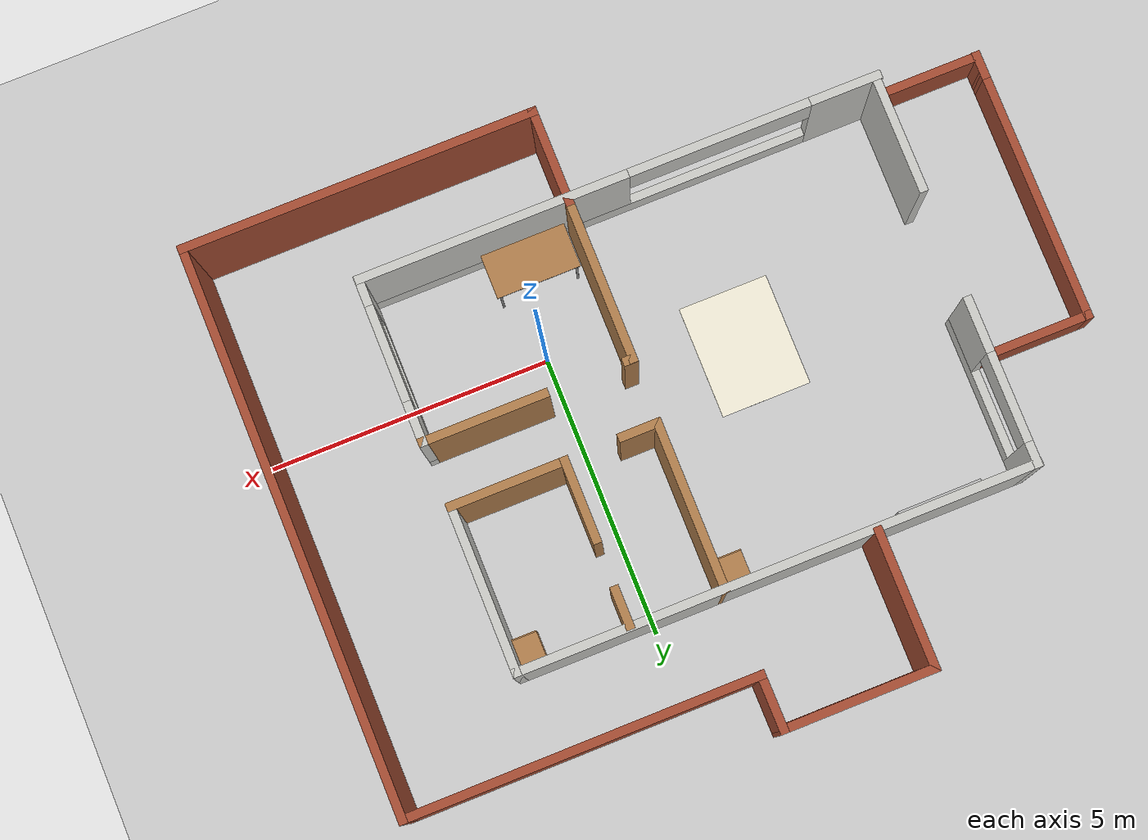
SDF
<sdf version="1.7">
 <world name="default">
  <light name="sun" type="directional">
   <pose>0 0 10 0 -0 0</pose>
   <diffuse>0.8 0.8 0.8 1</diffuse>
   <specular>0.2 0.2 0.2 1</specular>
   <attenuation>
    <range>1000</range>
    <constant>0.9</constant>
    <linear>0.01</linear>
    <quadratic>0.001</quadratic>
   </attenuation>
   <direction>-0.5 0.1 -0.9</direction>
   <spot><inner_angle>0</inner_angle><outer_angle>0</outer_angle><falloff>0</falloff></spot>
  </light>
  <model name="ground_plane">
   <static>1</static>
   <link name="link">
    <collision name="collision">
     <geometry><plane><normal>0 0 1</normal><size>100 100</size></plane></geometry>
     <surface><friction><ode><mu>100</mu><mu2>50</mu2></ode></friction></surface>
    </collision>
    <visual name="visual">
     <cast_shadows>0</cast_shadows>
     <geometry><plane><normal>0 0 1</normal><size>100 100</size></plane></geometry>
     <material>
      <script><uri>file://media/materials/scripts/gazebo.material</uri><name>Gazebo/Grey</name></script>
     </material>
    </visual>
   </link>
  </model>
  <gravity>0 0 -9.8</gravity>
  <magnetic_field>6e-06 2.3e-05 -4.2e-05</magnetic_field>
  <atmosphere type="adiabatic"/>
  <physics type="ode">
   <max_step_size>0.001</max_step_size>
   <real_time_factor>1</real_time_factor>
   <real_time_update_rate>1000</real_time_update_rate>
  </physics>
  <scene><ambient>0.4 0.4 0.4 1</ambient><background>0.7 0.7 0.7 1</background><shadows>1</shadows></scene>
  <audio><device>default</device></audio>
  <spherical_coordinates>
   <surface_model>EARTH_WGS84</surface_model>
   <latitude_deg>0</latitude_deg>
   <longitude_deg>0</longitude_deg>
   <elevation>0</elevation>
   <heading_deg>0</heading_deg>
  </spherical_coordinates>
  <model name="anlh_house">
   <pose>-1.89024 1.87159 0 0 -0 0</pose>
   <link name="Wall_0">
    <collision name="Wall_0_Collision">
     <geometry><box><size>9.13044 0.15 2.5</size></box></geometry>
     <pose>0 0 1.25 0 -0 0</pose>
    </collision>
    <visual name="Wall_0_Visual">
     <pose>0 0 1.25 0 -0 0</pose>
     <geometry><box><size>9.13044 0.15 2.5</size></box></geometry>
     <material>
      <script><uri>file://media/materials/scripts/gazebo.material</uri><name>Gazebo/CeilingTiled</name></script>
      <ambient>1 1 1 1</ambient>
     </material>
     <meta><layer>0</layer></meta>
    </visual>
    <pose>-0.244326 2.97886 0 0 -0 0</pose>
   </link>
   <link name="Wall_10">
    <collision name="Wall_10_Collision">
     <geometry><box><size>0.75 0.15 2.5</size></box></geometry>
     <pose>0 0 1.25 0 -0 0</pose>
    </collision>
    <visual name="Wall_10_Visual">
     <pose>0 0 1.25 0 -0 0</pose>
     <geometry><box><size>0.75 0.15 2.5</size></box></geometry>
     <material>
      <script><uri>file://media/materials/scripts/gazebo.material</uri><name>Gazebo/Wood</name></script>
      <ambient>1 1 1 1</ambient>
     </material>
     <meta><layer>0</layer></meta>
    </visual>
    <pose>0.982799 0.109395 0 0 -0 0</pose>
   </link>
   <link name="Wall_12">
    <collision name="Wall_12_Collision">
     <geometry><box><size>2 0.15 2.5</size></box></geometry>
     <pose>0 0 1.25 0 -0 0</pose>
    </collision>
    <visual name="Wall_12_Visual">
     <pose>0 0 1.25 0 -0 0</pose>
     <geometry><box><size>2 0.15 2.5</size></box></geometry>
     <material>
      <script><uri>file://media/materials/scripts/gazebo.material</uri><name>Gazebo/Wood</name></script>
      <ambient>1 1 1 1</ambient>
     </material>
     <meta><layer>0</layer></meta>
    </visual>
    <pose>3.32089 0.128859 0 0 -0 3.14159</pose>
   </link>
   <link name="Wall_15">
    <collision name="Wall_15_Collision">
     <geometry><box><size>1.5 0.15 2.5</size></box></geometry>
     <pose>0 0 1.25 0 -0 0</pose>
    </collision>
    <visual name="Wall_15_Visual">
     <pose>0 0 1.25 0 -0 0</pose>
     <geometry><box><size>1.5 0.15 2.5</size></box></geometry>
     <material>
      <script><uri>file://media/materials/scripts/gazebo.material</uri><name>Gazebo/Wood</name></script>
      <ambient>1 1 1 1</ambient>
     </material>
     <meta><layer>0</layer></meta>
    </visual>
    <pose>2.28398 0.804804 0 0 -0 -1.5708</pose>
   </link>
   <link name="Wall_17">
    <pose>-0.248567 -3.85969 0 0 -0 0.00091</pose>
    <visual name="Wall_17_Visual_0">
     <pose>-3.97572 0 1.25 0 -0 0</pose>
     <geometry><box><size>1.25973 0.15 2.5</size></box></geometry>
     <material>
      <script><uri>file://media/materials/scripts/gazebo.material</uri><name>Gazebo/CeilingTiled</name></script>
      <ambient>1 1 1 1</ambient>
     </material>
     <meta><layer>0</layer></meta>
    </visual>
    <collision name="Wall_17_Collision_0">
     <geometry><box><size>1.25973 0.15 2.5</size></box></geometry>
     <pose>-3.97572 0 1.25 0 -0 0</pose>
    </collision>
    <visual name="Wall_17_Visual_1">
     <pose>0.629866 0 0.25 0 -0 0</pose>
     <geometry><box><size>7.95144 0.15 0.5</size></box></geometry>
     <material>
      <script><uri>file://media/materials/scripts/gazebo.material</uri><name>Gazebo/CeilingTiled</name></script>
      <ambient>1 1 1 1</ambient>
     </material>
     <meta><layer>0</layer></meta>
    </visual>
    <collision name="Wall_17_Collision_1">
     <geometry><box><size>7.95144 0.15 0.5</size></box></geometry>
     <pose>0.629866 0 0.25 0 -0 0</pose>
    </collision>
    <visual name="Wall_17_Visual_2">
     <pose>2.22487 0 1.5 0 -0 0</pose>
     <geometry><box><size>4.76145 0.15 2</size></box></geometry>
     <material>
      <script><uri>file://media/materials/scripts/gazebo.material</uri><name>Gazebo/CeilingTiled</name></script>
      <ambient>1 1 1 1</ambient>
     </material>
     <meta><layer>0</layer></meta>
    </visual>
    <collision name="Wall_17_Collision_2">
     <geometry><box><size>4.76145 0.15 2</size></box></geometry>
     <pose>2.22487 0 1.5 0 -0 0</pose>
    </collision>
    <visual name="Wall_17_Visual_3">
     <pose>-1.75086 0 2.1 0 -0 0</pose>
     <geometry><box><size>3.19 0.15 0.8</size></box></geometry>
     <material>
      <script><uri>file://media/materials/scripts/gazebo.material</uri><name>Gazebo/CeilingTiled</name></script>
      <ambient>1 1 1 1</ambient>
     </material>
     <meta><layer>0</layer></meta>
    </visual>
    <collision name="Wall_17_Collision_3">
     <geometry><box><size>3.19 0.15 0.8</size></box></geometry>
     <pose>-1.75086 0 2.1 0 -0 0</pose>
    </collision>
   </link>
   <link name="Wall_18">
    <pose>4.28958 -2.43057 0 0 -0 1.5708</pose>
    <visual name="Wall_18_Visual_0">
     <pose>-1.22917 0 1.25 0 -0 0</pose>
     <geometry><box><size>0.541656 0.15 2.5</size></box></geometry>
     <material>
      <script><uri>file://media/materials/scripts/gazebo.material</uri><name>Gazebo/CeilingTiled</name></script>
      <ambient>1 1 1 1</ambient>
     </material>
     <meta><layer>0</layer></meta>
    </visual>
    <collision name="Wall_18_Collision_0">
     <geometry><box><size>0.541656 0.15 2.5</size></box></geometry>
     <pose>-1.22917 0 1.25 0 -0 0</pose>
    </collision>
    <visual name="Wall_18_Visual_1">
     <pose>0.270828 0 0.25 0 -0 0</pose>
     <geometry><box><size>2.45834 0.15 0.5</size></box></geometry>
     <material>
      <script><uri>file://media/materials/scripts/gazebo.material</uri><name>Gazebo/CeilingTiled</name></script>
      <ambient>1 1 1 1</ambient>
     </material>
     <meta><layer>0</layer></meta>
    </visual>
    <collision name="Wall_18_Collision_1">
     <geometry><box><size>2.45834 0.15 0.5</size></box></geometry>
     <pose>0.270828 0 0.25 0 -0 0</pose>
    </collision>
    <visual name="Wall_18_Visual_2">
     <pose>1.10933 0 1.5 0 -0 0</pose>
     <geometry><box><size>0.781344 0.15 2</size></box></geometry>
     <material>
      <script><uri>file://media/materials/scripts/gazebo.material</uri><name>Gazebo/CeilingTiled</name></script>
      <ambient>1 1 1 1</ambient>
     </material>
     <meta><layer>0</layer></meta>
    </visual>
    <collision name="Wall_18_Collision_2">
     <geometry><box><size>0.781344 0.15 2</size></box></geometry>
     <pose>1.10933 0 1.5 0 -0 0</pose>
    </collision>
    <visual name="Wall_18_Visual_3">
     <pose>-0.119844 0 2.1 0 -0 0</pose>
     <geometry><box><size>1.677 0.15 0.8</size></box></geometry>
     <material>
      <script><uri>file://media/materials/scripts/gazebo.material</uri><name>Gazebo/CeilingTiled</name></script>
      <ambient>1 1 1 1</ambient>
     </material>
     <meta><layer>0</layer></meta>
    </visual>
    <collision name="Wall_18_Collision_3">
     <geometry><box><size>1.677 0.15 0.8</size></box></geometry>
     <pose>-0.119844 0 2.1 0 -0 0</pose>
    </collision>
   </link>
   <link name="Wall_2">
    <pose>-4.72585 1.55386 0 0 -0 -1.5708</pose>
    <visual name="Wall_2_Visual_0">
     <pose>-1.27549 0 1.25 0 -0 0</pose>
     <geometry><box><size>0.449022 0.15 2.5</size></box></geometry>
     <material>
      <script><uri>file://media/materials/scripts/gazebo.material</uri><name>Gazebo/CeilingTiled</name></script>
      <ambient>1 1 1 1</ambient>
     </material>
     <meta><layer>0</layer></meta>
    </visual>
    <collision name="Wall_2_Collision_0">
     <geometry><box><size>0.449022 0.15 2.5</size></box></geometry>
     <pose>-1.27549 0 1.25 0 -0 0</pose>
    </collision>
    <visual name="Wall_2_Visual_1">
     <pose>0.224511 0 0.25 0 -0 0</pose>
     <geometry><box><size>2.55098 0.15 0.5</size></box></geometry>
     <material>
      <script><uri>file://media/materials/scripts/gazebo.material</uri><name>Gazebo/CeilingTiled</name></script>
      <ambient>1 1 1 1</ambient>
     </material>
     <meta><layer>0</layer></meta>
    </visual>
    <collision name="Wall_2_Collision_1">
     <geometry><box><size>2.55098 0.15 0.5</size></box></geometry>
     <pose>0.224511 0 0.25 0 -0 0</pose>
    </collision>
    <visual name="Wall_2_Visual_2">
     <pose>1.00701 0 1.5 0 -0 0</pose>
     <geometry><box><size>0.985978 0.15 2</size></box></geometry>
     <material>
      <script><uri>file://media/materials/scripts/gazebo.material</uri><name>Gazebo/CeilingTiled</name></script>
      <ambient>1 1 1 1</ambient>
     </material>
     <meta><layer>0</layer></meta>
    </visual>
    <collision name="Wall_2_Collision_2">
     <geometry><box><size>0.985978 0.15 2</size></box></geometry>
     <pose>1.00701 0 1.5 0 -0 0</pose>
    </collision>
    <visual name="Wall_2_Visual_3">
     <pose>-0.268478 0 2.1 0 -0 0</pose>
     <geometry><box><size>1.565 0.15 0.8</size></box></geometry>
     <material>
      <script><uri>file://media/materials/scripts/gazebo.material</uri><name>Gazebo/CeilingTiled</name></script>
      <ambient>1 1 1 1</ambient>
     </material>
     <meta><layer>0</layer></meta>
    </visual>
    <collision name="Wall_2_Collision_3">
     <geometry><box><size>1.565 0.15 0.8</size></box></geometry>
     <pose>-0.268478 0 2.1 0 -0 0</pose>
    </collision>
   </link>
   <link name="Wall_20">
    <collision name="Wall_20_Collision">
     <geometry><box><size>2.25 0.15 2.5</size></box></geometry>
     <pose>0 0 1.25 0 -0 0</pose>
    </collision>
    <visual name="Wall_20_Visual">
     <pose>0 0 1.25 0 -0 0</pose>
     <geometry><box><size>2.25 0.15 2.5</size></box></geometry>
     <material>
      <script><uri>file://media/materials/scripts/gazebo.material</uri><name>Gazebo/Wood</name></script>
      <ambient>1 1 1 1</ambient>
     </material>
     <meta><layer>0</layer></meta>
    </visual>
    <pose>3.23958 -1.00557 0 0 -0 3.14159</pose>
   </link>
   <link name="Wall_22">
    <collision name="Wall_22_Collision">
     <geometry><box><size>2.92439 0.15 2.5</size></box></geometry>
     <pose>0 0 1.25 0 -0 0</pose>
    </collision>
    <visual name="Wall_22_Visual">
     <pose>0 0 1.25 0 -0 0</pose>
     <geometry><box><size>2.92439 0.15 2.5</size></box></geometry>
     <material>
      <script><uri>file://media/materials/scripts/gazebo.material</uri><name>Gazebo/Wood</name></script>
      <ambient>1 1 1 1</ambient>
     </material>
     <meta><layer>0</layer></meta>
    </visual>
    <pose>0.6565 -2.40032 0 0 -0 1.5708</pose>
   </link>
   <link name="Wall_23">
    <collision name="Wall_23_Collision">
     <geometry><box><size>0.25 0.15 2.5</size></box></geometry>
     <pose>0 0 1.25 0 -0 0</pose>
    </collision>
    <visual name="Wall_23_Visual">
     <pose>0 0 1.25 0 -0 0</pose>
     <geometry><box><size>0.25 0.15 2.5</size></box></geometry>
     <material>
      <script><uri>file://media/materials/scripts/gazebo.material</uri><name>Gazebo/Wood</name></script>
      <ambient>1 1 1 1</ambient>
     </material>
     <meta><layer>0</layer></meta>
    </visual>
    <pose>0.7065 -1.00557 0 0 -0 0</pose>
   </link>
   <link name="Wall_27">
    <collision name="Wall_27_Collision">
     <geometry><box><size>2.10962 0.15 1</size></box></geometry>
     <pose>0 0 0.5 0 -0 0</pose>
    </collision>
    <visual name="Wall_27_Visual">
     <pose>0 0 0.5 0 -0 0</pose>
     <geometry><box><size>2.10962 0.15 1</size></box></geometry>
     <material>
      <script><uri>file://media/materials/scripts/gazebo.material</uri><name>Gazebo/Bricks</name></script>
      <ambient>1 1 1 1</ambient>
     </material>
     <meta><layer>0</layer></meta>
    </visual>
    <pose>-5.77665 0.916687 0 0 -0 3.14108</pose>
   </link>
   <link name="Wall_29">
    <collision name="Wall_29_Collision">
     <geometry><box><size>1.99244 0.15 1</size></box></geometry>
     <pose>0 0 0.5 0 -0 0</pose>
    </collision>
    <visual name="Wall_29_Visual">
     <pose>0 0 0.5 0 -0 0</pose>
     <geometry><box><size>1.99244 0.15 1</size></box></geometry>
     <material>
      <script><uri>file://media/materials/scripts/gazebo.material</uri><name>Gazebo/Bricks</name></script>
      <ambient>1 1 1 1</ambient>
     </material>
     <meta><layer>0</layer></meta>
    </visual>
    <pose>-5.70065 -3.86381 0 0 -0 0</pose>
   </link>
   <link name="Wall_31">
    <collision name="Wall_31_Collision">
     <geometry><box><size>4.58828 0.15 1</size></box></geometry>
     <pose>0 0 0.5 0 -0 0</pose>
    </collision>
    <visual name="Wall_31_Visual">
     <pose>0 0 0.5 0 -0 0</pose>
     <geometry><box><size>4.58828 0.15 1</size></box></geometry>
     <material>
      <script><uri>file://media/materials/scripts/gazebo.material</uri><name>Gazebo/Bricks</name></script>
      <ambient>1 1 1 1</ambient>
     </material>
     <meta><layer>0</layer></meta>
    </visual>
    <pose>-6.75415 -1.30181 0 0 -0 -1.5699</pose>
   </link>
   <link name="Wall_34">
    <collision name="Wall_34_Collision">
     <geometry><box><size>0.501087 0.15 1</size></box></geometry>
     <pose>0 0 0.5 0 -0 0</pose>
    </collision>
    <visual name="Wall_34_Visual">
     <pose>0 0 0.5 0 -0 0</pose>
     <geometry><box><size>0.501087 0.15 1</size></box></geometry>
     <material>
      <script><uri>file://media/materials/scripts/gazebo.material</uri><name>Gazebo/Bricks</name></script>
      <ambient>1 1 1 1</ambient>
     </material>
     <meta><layer>0</layer></meta>
    </visual>
    <pose>-6.75215 -3.69631 0 0 -0 -1.5708</pose>
   </link>
   <link name="Wall_36">
    <collision name="Wall_36_Collision">
     <geometry><box><size>2 0.15 2.5</size></box></geometry>
     <pose>0 0 1.25 0 -0 0</pose>
    </collision>
    <visual name="Wall_36_Visual">
     <pose>0 0 1.25 0 -0 0</pose>
     <geometry><box><size>2 0.15 2.5</size></box></geometry>
     <material>
      <script><uri>file://media/materials/scripts/gazebo.material</uri><name>Gazebo/CeilingTiled</name></script>
      <ambient>1 1 1 1</ambient>
     </material>
     <meta><layer>0</layer></meta>
    </visual>
    <pose>-4.74773 -2.78934 0 0 -0 -1.5708</pose>
   </link>
   <link name="Wall_38">
    <collision name="Wall_38_Collision">
     <geometry><box><size>1.75 0.15 2.5</size></box></geometry>
     <pose>0 0 1.25 0 -0 0</pose>
    </collision>
    <visual name="Wall_38_Visual">
     <pose>0 0 1.25 0 -0 0</pose>
     <geometry><box><size>1.75 0.15 2.5</size></box></geometry>
     <material>
      <script><uri>file://media/materials/scripts/gazebo.material</uri><name>Gazebo/Bricks</name></script>
      <ambient>1 1 1 1</ambient>
     </material>
     <meta><layer>0</layer></meta>
    </visual>
    <pose>0.6565 -4.58751 0 0 -0 -1.5708</pose>
   </link>
   <link name="Wall_39">
    <collision name="Wall_39_Collision">
     <geometry><box><size>6.25 0.15 2.5</size></box></geometry>
     <pose>0 0 1.25 0 -0 0</pose>
    </collision>
    <visual name="Wall_39_Visual">
     <pose>0 0 1.25 0 -0 0</pose>
     <geometry><box><size>6.25 0.15 2.5</size></box></geometry>
     <material>
      <script><uri>file://media/materials/scripts/gazebo.material</uri><name>Gazebo/Bricks</name></script>
      <ambient>1 1 1 1</ambient>
     </material>
     <meta><layer>0</layer></meta>
    </visual>
    <pose>3.7065 -5.38751 0 0 -0 0</pose>
   </link>
   <link name="Wall_4">
    <collision name="Wall_4_Collision">
     <geometry><box><size>3 0.15 2.5</size></box></geometry>
     <pose>0 0 1.25 0 -0 0</pose>
    </collision>
    <visual name="Wall_4_Visual">
     <pose>0 0 1.25 0 -0 0</pose>
     <geometry><box><size>3 0.15 2.5</size></box></geometry>
     <material>
      <script><uri>file://media/materials/scripts/gazebo.material</uri><name>Gazebo/CeilingTiled</name></script>
      <ambient>1 1 1 1</ambient>
     </material>
     <meta><layer>0</layer></meta>
    </visual>
    <pose>4.24589 1.55386 0 0 -0 -1.5708</pose>
   </link>
   <link name="Wall_40">
    <collision name="Wall_40_Collision">
     <geometry><box><size>10 0.15 2.5</size></box></geometry>
     <pose>0 0 1.25 0 -0 0</pose>
    </collision>
    <visual name="Wall_40_Visual">
     <pose>0 0 1.25 0 -0 0</pose>
     <geometry><box><size>10 0.15 2.5</size></box></geometry>
     <material>
      <script><uri>file://media/materials/scripts/gazebo.material</uri><name>Gazebo/Bricks</name></script>
      <ambient>1 1 1 1</ambient>
     </material>
     <meta><layer>0</layer></meta>
    </visual>
    <pose>6.7565 -0.462514 0 0 -0 1.5708</pose>
   </link>
   <link name="Wall_41">
    <collision name="Wall_41_Collision">
     <geometry><box><size>6.25 0.15 2.5</size></box></geometry>
     <pose>0 0 1.25 0 -0 0</pose>
    </collision>
    <visual name="Wall_41_Visual">
     <pose>0 0 1.25 0 -0 0</pose>
     <geometry><box><size>6.25 0.15 2.5</size></box></geometry>
     <material>
      <script><uri>file://media/materials/scripts/gazebo.material</uri><name>Gazebo/Bricks</name></script>
      <ambient>1 1 1 1</ambient>
     </material>
     <meta><layer>0</layer></meta>
    </visual>
    <pose>3.7065 4.46249 0 0 -0 3.14159</pose>
   </link>
   <link name="Wall_43">
    <collision name="Wall_43_Collision">
     <geometry><box><size>2.5 0.15 2.5</size></box></geometry>
     <pose>0 0 1.25 0 -0 0</pose>
    </collision>
    <visual name="Wall_43_Visual">
     <pose>0 0 1.25 0 -0 0</pose>
     <geometry><box><size>2.5 0.15 2.5</size></box></geometry>
     <material>
      <script><uri>file://media/materials/scripts/gazebo.material</uri><name>Gazebo/Bricks</name></script>
      <ambient>1 1 1 1</ambient>
     </material>
     <meta><layer>0</layer></meta>
    </visual>
    <pose>-1.95093 4.21191 0 0 -0 1.5708</pose>
   </link>
   <link name="Wall_44">
    <collision name="Wall_44_Collision">
     <geometry><box><size>2.75 0.15 2.5</size></box></geometry>
     <pose>0 0 1.25 0 -0 0</pose>
    </collision>
    <visual name="Wall_44_Visual">
     <pose>0 0 1.25 0 -0 0</pose>
     <geometry><box><size>2.75 0.15 2.5</size></box></geometry>
     <material>
      <script><uri>file://media/materials/scripts/gazebo.material</uri><name>Gazebo/Bricks</name></script>
      <ambient>1 1 1 1</ambient>
     </material>
     <meta><layer>0</layer></meta>
    </visual>
    <pose>-0.650931 5.38691 0 0 -0 0</pose>
   </link>
   <link name="Wall_45">
    <collision name="Wall_45_Collision">
     <geometry><box><size>1.07446 0.15 2.5</size></box></geometry>
     <pose>0 0 1.25 0 -0 0</pose>
    </collision>
    <visual name="Wall_45_Visual">
     <pose>0 0 1.25 0 -0 0</pose>
     <geometry><box><size>1.07446 0.15 2.5</size></box></geometry>
     <material>
      <script><uri>file://media/materials/scripts/gazebo.material</uri><name>Gazebo/Bricks</name></script>
      <ambient>1 1 1 1</ambient>
     </material>
     <meta><layer>0</layer></meta>
    </visual>
    <pose>0.652784 4.9247 0 0 -0 -1.56276</pose>
   </link>
   <link name="Wall_6">
    <collision name="Wall_6_Collision">
     <geometry><box><size>0.75 0.15 2.5</size></box></geometry>
     <pose>0 0 1.25 0 -0 0</pose>
    </collision>
    <visual name="Wall_6_Visual">
     <pose>0 0 1.25 0 -0 0</pose>
     <geometry><box><size>0.75 0.15 2.5</size></box></geometry>
     <material>
      <script><uri>file://media/materials/scripts/gazebo.material</uri><name>Gazebo/Wood</name></script>
      <ambient>1 1 1 1</ambient>
     </material>
     <meta><layer>0</layer></meta>
    </visual>
    <pose>2.30024 2.65277 0 0 -0 -1.5708</pose>
   </link>
   <link name="Wall_9">
    <collision name="Wall_9_Collision">
     <geometry><box><size>3.01946 0.15 2.5</size></box></geometry>
     <pose>0 0 1.25 0 -0 0</pose>
    </collision>
    <visual name="Wall_9_Visual">
     <pose>0 0 1.25 0 -0 0</pose>
     <geometry><box><size>3.01946 0.15 2.5</size></box></geometry>
     <material>
      <script><uri>file://media/materials/scripts/gazebo.material</uri><name>Gazebo/Wood</name></script>
      <ambient>1 1 1 1</ambient>
     </material>
     <meta><layer>0</layer></meta>
    </visual>
    <pose>0.674695 1.54413 0 0 -0 -1.57042</pose>
   </link>
   <static>1</static>
  </model>
  <model name="cabinet">
   <static>1</static>
   <link name="cabinet_bottom_plate">
    <inertial>
     <pose>0 0 -1 0 -0 0</pose>
     <inertia><ixx>2.05</ixx><ixy>0</ixy><ixz>0</ixz><iyy>2.05</iyy><iyz>0</iyz><izz>2.05</izz></inertia>
     <mass>25</mass>
    </inertial>
    <collision name="cabinet_bottom_plate_geom">
     <pose>0 0 0.01 0 -0 0</pose>
     <geometry><box><size>0.45 0.45 0.02</size></box></geometry>
    </collision>
    <visual name="cabinet_bottom_plate_geom_visual">
     <pose>0 0 0.01 0 -0 0</pose>
     <geometry><box><size>0.45 0.45 0.02</size></box></geometry>
     <material>
      <script><uri>file://media/materials/scripts/gazebo.material</uri><name>Gazebo/Wood</name></script>
     </material>
    </visual>
    <collision name="cabinet_bottom_plate_geom_cabinet_back_plate">
     <pose>0.235 0 0.51 0 -0 0</pose>
     <geometry><box><size>0.02 0.45 1.02</size></box></geometry>
    </collision>
    <visual name="cabinet_bottom_plate_geom_cabinet_back_plate_visual">
     <pose>0.235 0 0.51 0 -0 0</pose>
     <geometry><box><size>0.02 0.45 1.02</size></box></geometry>
     <material>
      <script><uri>file://media/materials/scripts/gazebo.material</uri><name>Gazebo/Wood</name></script>
     </material>
    </visual>
    <collision name="cabinet_bottom_plate_geom_cabinet_left_plate">
     <pose>0 0.235 0.51 0 -0 0</pose>
     <geometry><box><size>0.45 0.02 1.02</size></box></geometry>
    </collision>
    <visual name="cabinet_bottom_plate_geom_cabinet_left_plate_visual">
     <pose>0 0.235 0.51 0 -0 0</pose>
     <geometry><box><size>0.45 0.02 1.02</size></box></geometry>
     <material>
      <script><uri>file://media/materials/scripts/gazebo.material</uri><name>Gazebo/Wood</name></script>
     </material>
    </visual>
    <collision name="cabinet_bottom_plate_geom_cabinet_middle_plate">
     <pose>0 0 0.51 0 -0 0</pose>
     <geometry><box><size>0.45 0.45 0.02</size></box></geometry>
    </collision>
    <visual name="cabinet_bottom_plate_geom_cabinet_middle_plate_visual">
     <pose>0 0 0.51 0 -0 0</pose>
     <geometry><box><size>0.45 0.45 0.02</size></box></geometry>
     <material>
      <script><uri>file://media/materials/scripts/gazebo.material</uri><name>Gazebo/Wood</name></script>
     </material>
    </visual>
    <collision name="cabinet_bottom_plate_geom_cabinet_right_plate">
     <pose>0 -0.235 0.51 0 -0 0</pose>
     <geometry><box><size>0.45 0.02 1.02</size></box></geometry>
    </collision>
    <visual name="cabinet_bottom_plate_geom_cabinet_right_plate_visual">
     <pose>0 -0.235 0.51 0 -0 0</pose>
     <geometry><box><size>0.45 0.02 1.02</size></box></geometry>
     <material>
      <script><uri>file://media/materials/scripts/gazebo.material</uri><name>Gazebo/Wood</name></script>
     </material>
    </visual>
    <collision name="cabinet_bottom_plate_geom_cabinet_top_plate">
     <pose>0 0 1.01 0 -0 0</pose>
     <geometry><box><size>0.45 0.45 0.02</size></box></geometry>
    </collision>
    <visual name="cabinet_bottom_plate_geom_cabinet_top_plate_visual">
     <pose>0 0 1.01 0 -0 0</pose>
     <geometry><box><size>0.45 0.45 0.02</size></box></geometry>
     <material>
      <script><uri>file://media/materials/scripts/gazebo.material</uri><name>Gazebo/Wood</name></script>
     </material>
    </visual>
   </link>
   <pose>-1.55673 4.50447 0 0 -0 0</pose>
  </model>
  <model name="cabinet_0">
   <static>1</static>
   <link name="cabinet_bottom_plate">
    <inertial>
     <pose>0 0 -1 0 -0 0</pose>
     <inertia><ixx>2.05</ixx><ixy>0</ixy><ixz>0</ixz><iyy>2.05</iyy><iyz>0</iyz><izz>2.05</izz></inertia>
     <mass>25</mass>
    </inertial>
    <collision name="cabinet_bottom_plate_geom">
     <pose>0 0 0.01 0 -0 0</pose>
     <geometry><box><size>0.45 0.45 0.02</size></box></geometry>
    </collision>
    <visual name="cabinet_bottom_plate_geom_visual">
     <pose>0 0 0.01 0 -0 0</pose>
     <geometry><box><size>0.45 0.45 0.02</size></box></geometry>
     <material>
      <script><uri>file://media/materials/scripts/gazebo.material</uri><name>Gazebo/Wood</name></script>
     </material>
    </visual>
    <collision name="cabinet_bottom_plate_geom_cabinet_back_plate">
     <pose>0.235 0 0.51 0 -0 0</pose>
     <geometry><box><size>0.02 0.45 1.02</size></box></geometry>
    </collision>
    <visual name="cabinet_bottom_plate_geom_cabinet_back_plate_visual">
     <pose>0.235 0 0.51 0 -0 0</pose>
     <geometry><box><size>0.02 0.45 1.02</size></box></geometry>
     <material>
      <script><uri>file://media/materials/scripts/gazebo.material</uri><name>Gazebo/Wood</name></script>
     </material>
    </visual>
    <collision name="cabinet_bottom_plate_geom_cabinet_left_plate">
     <pose>0 0.235 0.51 0 -0 0</pose>
     <geometry><box><size>0.45 0.02 1.02</size></box></geometry>
    </collision>
    <visual name="cabinet_bottom_plate_geom_cabinet_left_plate_visual">
     <pose>0 0.235 0.51 0 -0 0</pose>
     <geometry><box><size>0.45 0.02 1.02</size></box></geometry>
     <material>
      <script><uri>file://media/materials/scripts/gazebo.material</uri><name>Gazebo/Wood</name></script>
     </material>
    </visual>
    <collision name="cabinet_bottom_plate_geom_cabinet_middle_plate">
     <pose>0 0 0.51 0 -0 0</pose>
     <geometry><box><size>0.45 0.45 0.02</size></box></geometry>
    </collision>
    <visual name="cabinet_bottom_plate_geom_cabinet_middle_plate_visual">
     <pose>0 0 0.51 0 -0 0</pose>
     <geometry><box><size>0.45 0.45 0.02</size></box></geometry>
     <material>
      <script><uri>file://media/materials/scripts/gazebo.material</uri><name>Gazebo/Wood</name></script>
     </material>
    </visual>
    <collision name="cabinet_bottom_plate_geom_cabinet_right_plate">
     <pose>0 -0.235 0.51 0 -0 0</pose>
     <geometry><box><size>0.45 0.02 1.02</size></box></geometry>
    </collision>
    <visual name="cabinet_bottom_plate_geom_cabinet_right_plate_visual">
     <pose>0 -0.235 0.51 0 -0 0</pose>
     <geometry><box><size>0.45 0.02 1.02</size></box></geometry>
     <material>
      <script><uri>file://media/materials/scripts/gazebo.material</uri><name>Gazebo/Wood</name></script>
     </material>
    </visual>
    <collision name="cabinet_bottom_plate_geom_cabinet_top_plate">
     <pose>0 0 1.01 0 -0 0</pose>
     <geometry><box><size>0.45 0.45 0.02</size></box></geometry>
    </collision>
    <visual name="cabinet_bottom_plate_geom_cabinet_top_plate_visual">
     <pose>0 0 1.01 0 -0 0</pose>
     <geometry><box><size>0.45 0.45 0.02</size></box></geometry>
     <material>
      <script><uri>file://media/materials/scripts/gazebo.material</uri><name>Gazebo/Wood</name></script>
     </material>
    </visual>
   </link>
   <pose>2.06682 4.49432 0 0 -0 0</pose>
  </model>
  <model name="Table_1">
   <static>1</static>
   <link name="link">
    <collision name="surface">
     <pose>0 0 1 0 -0 0</pose>
     <geometry><box><size>1.5 0.8 0.03</size></box></geometry>
     <surface><friction><ode><mu>0.6</mu><mu2>0.6</mu2></ode></friction></surface>
    </collision>
    <visual name="visual1">
     <pose>0 0 1 0 -0 0</pose>
     <geometry><box><size>1.5 0.8 0.03</size></box></geometry>
     <material>
      <diffuse>1 1 1 1</diffuse>
      <script><uri>file://media/materials/scripts/gazebo.material</uri><name>Gazebo/Wood</name></script>
      <pbr>
       <metal>
        <albedo_map>https://fuel.ignitionrobotics.org/1.0/malbonico/models/table/1/files/Table_Diffuse.jpg</albedo_map>
       </metal>
      </pbr>
     </material>
    </visual>
    <collision name="front_left_leg">
     <pose>0.68 0.38 0.5 0 -0 0</pose>
     <geometry><cylinder><radius>0.02</radius><length>1</length></cylinder></geometry>
    </collision>
    <visual name="front_left_leg">
     <pose>0.68 0.38 0.5 0 -0 0</pose>
     <geometry><cylinder><radius>0.02</radius><length>1</length></cylinder></geometry>
     <material>
      <diffuse>0.5 0.5 0.5 1</diffuse>
      <script><uri>file://media/materials/scripts/gazebo.material</uri><name>Gazebo/Grey</name></script>
     </material>
    </visual>
    <collision name="front_right_leg">
     <pose>0.68 -0.38 0.5 0 -0 0</pose>
     <geometry><cylinder><radius>0.02</radius><length>1</length></cylinder></geometry>
    </collision>
    <visual name="front_right_leg">
     <pose>0.68 -0.38 0.5 0 -0 0</pose>
     <geometry><cylinder><radius>0.02</radius><length>1</length></cylinder></geometry>
     <material>
      <diffuse>0.5 0.5 0.5 1</diffuse>
      <script><uri>file://media/materials/scripts/gazebo.material</uri><name>Gazebo/Grey</name></script>
     </material>
    </visual>
    <collision name="back_right_leg">
     <pose>-0.68 -0.38 0.5 0 -0 0</pose>
     <geometry><cylinder><radius>0.02</radius><length>1</length></cylinder></geometry>
    </collision>
    <visual name="back_right_leg">
     <pose>-0.68 -0.38 0.5 0 -0 0</pose>
     <geometry><cylinder><radius>0.02</radius><length>1</length></cylinder></geometry>
     <material>
      <diffuse>0.5 0.5 0.5 1</diffuse>
      <script><uri>file://media/materials/scripts/gazebo.material</uri><name>Gazebo/Grey</name></script>
     </material>
    </visual>
    <collision name="back_left_leg">
     <pose>-0.68 0.38 0.5 0 -0 0</pose>
     <geometry><cylinder><radius>0.02</radius><length>1</length></cylinder></geometry>
    </collision>
    <visual name="back_left_leg">
     <pose>-0.68 0.38 0.5 0 -0 0</pose>
     <geometry><cylinder><radius>0.02</radius><length>1</length></cylinder></geometry>
     <material>
      <diffuse>0.5 0.5 0.5 1</diffuse>
      <script><uri>file://media/materials/scripts/gazebo.material</uri><name>Gazebo/Grey</name></script>
     </material>
    </visual>
   </link>
   <pose>-0.34242 -1.53266 0 0 -0 0</pose>
  </model>
  <model name="tv_65in">
   <link name="link">
    <visual name="visual">
     <geometry><box><size>0.05 1.45 0.83</size></box></geometry>
     <material>
      <script>
       <uri>https://fuel.ignitionrobotics.org/1.0/sebbyjp/models/tv_65in/1/files/material/script</uri>
       <uri>https://fuel.ignitionrobotics.org/1.0/sebbyjp/models/tv_65in/1/files/material/textures</uri>
       <name>Custom/tv</name>
      </script>
     </material>
    </visual>
   </link>
   <static>1</static>
   <pose>-5.02121 4.73807 1.61342 0 0 -1.56813</pose>
  </model>
  <model name="rug_ivory_2m">
   <link name="link">
    <visual name="visual">
     <geometry><box><size>1.6 2 0.005</size></box></geometry>
     <material>
      <script>
       <uri>https://fuel.ignitionrobotics.org/1.0/sebbyjp/models/rug_ivory_2m/1/files/material/script</uri>
       <uri>https://fuel.ignitionrobotics.org/1.0/sebbyjp/models/rug_ivory_2m/1/files/material/textures</uri>
       <name>Custom/rug_ivory_2m</name>
      </script>
     </material>
    </visual>
   </link>
   <static>1</static>
   <pose>-3.21805 1.00523 0 0 -0 0</pose>
  </model>
  <model name="FallingSnow">
   <pose>-10.1018 0.680583 5 0 -0 0</pose>
   <static>1</static>
   <link name="link">
    <particle_emitter name="emitter" type="box">
     <pose>0 0 0 0 1.5708 0</pose>
     <emitting>1</emitting>
     <size>25 25 0</size>
     <particle_size>0.03 0.03 0.03</particle_size>
     <min_velocity>2</min_velocity>
     <max_velocity>4</max_velocity>
     <scale_rate>0</scale_rate>
     <rate>200</rate>
     <material>
      <diffuse>0.7 0.7 0.7</diffuse>
      <specular>1.0 1.0 1.0</specular>
      <pbr><metal><albedo_map>materials/textures/snowflake.png</albedo_map></metal></pbr>
     </material>
     <color_range_image>materials/textures/snowcolors.png</color_range_image>
    </particle_emitter>
   </link>
  </model>
 </world>
</sdf>
